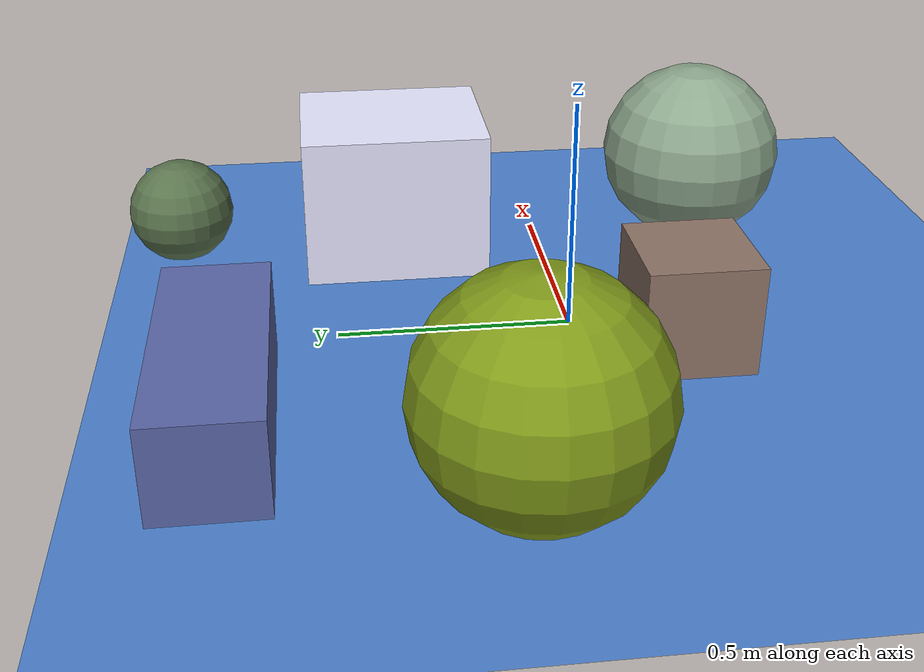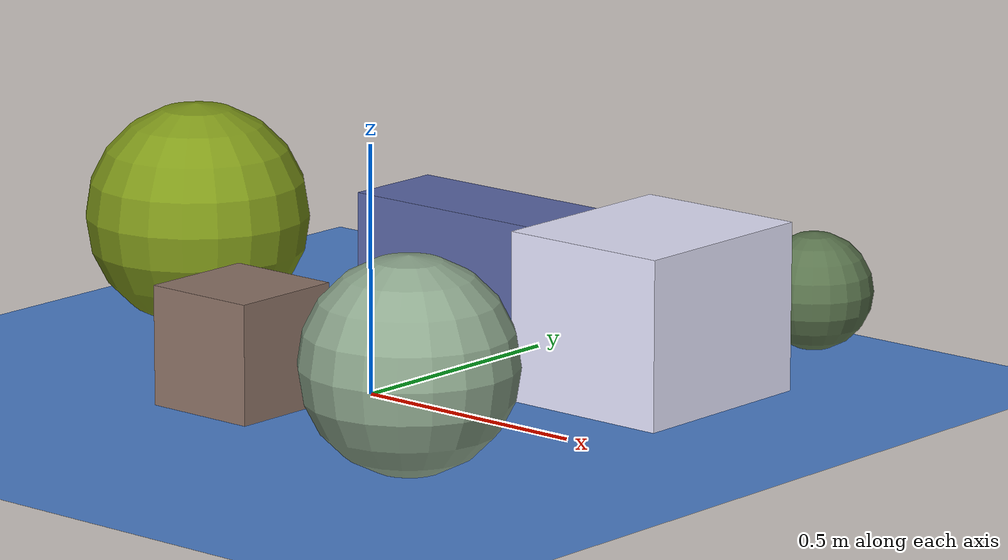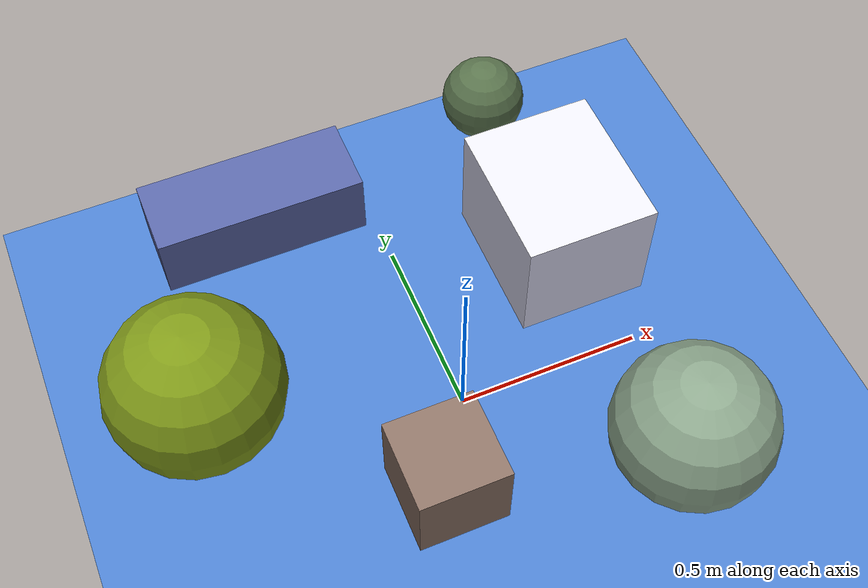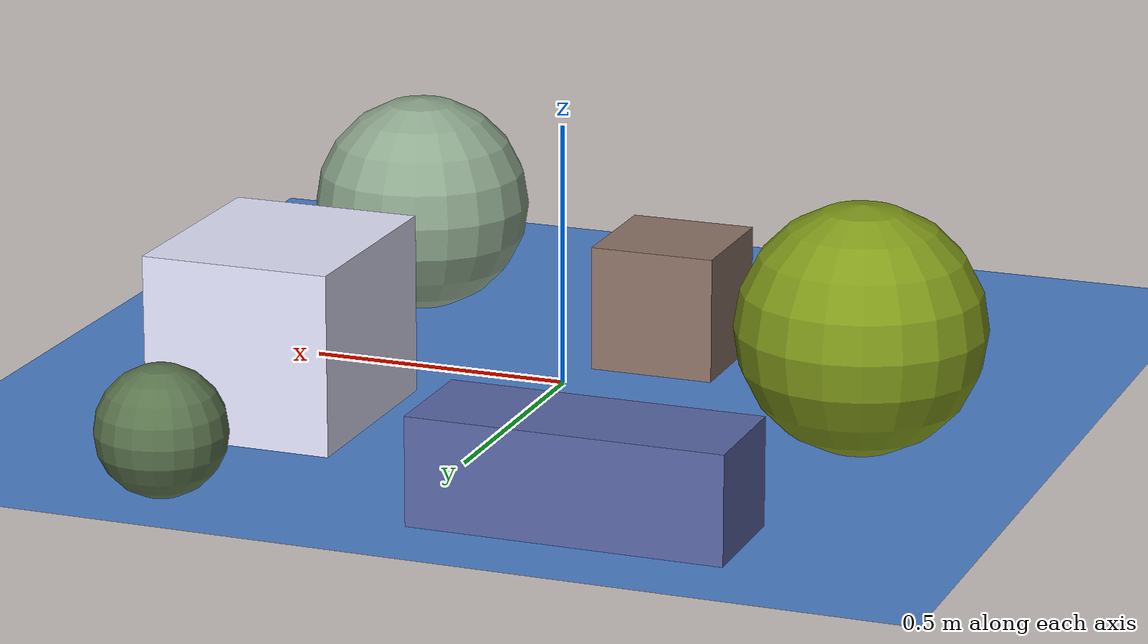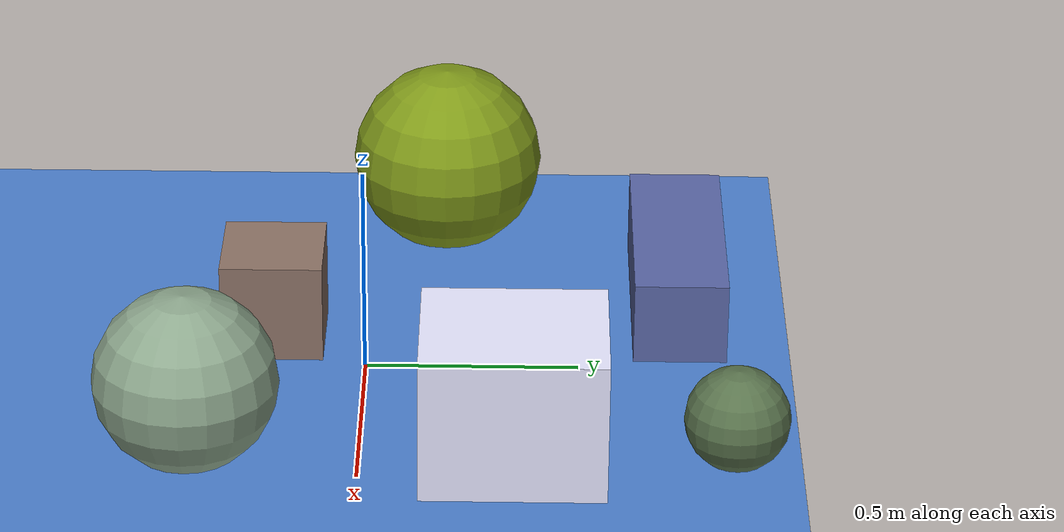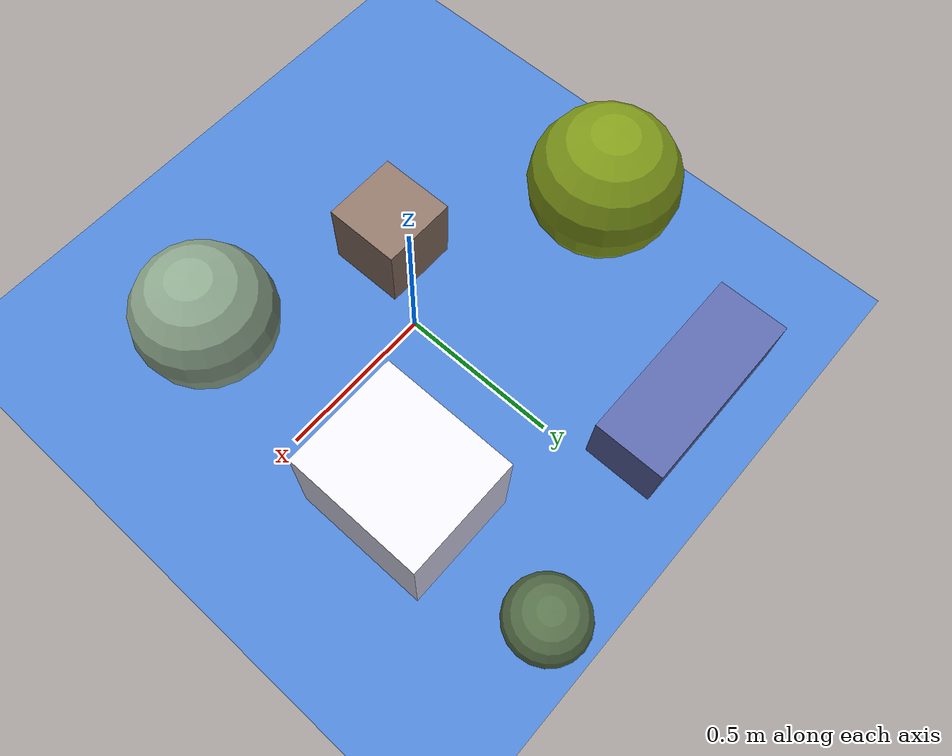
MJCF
<mujoco>
   <asset>
<texture type="skybox" builtin="gradient" rgb1="0.0 0.4 0.2" rgb2="1.0 0.4 0.4" width="256" height="256"/>
<texture name="checker_0" builtin="checker" type="2d" rgb1="0.7 0.5 0.8" rgb2="0.0 0.3 0.5" width="200" height="200"/>
<texture name="flat_1" builtin="flat" rgb1="0.9 0.9 1.0" rgb2="0.9 0.9 1.0"  width="200" height="200"/>
<texture name="flat_2" builtin="flat" rgb1="0.5 0.6 0.1" rgb2="0.5 0.6 0.1"  width="200" height="200"/>
<texture name="checker_3" builtin="checker" type="2d" rgb1="0.8 0.7 0.8" rgb2="0.3 0.2 0.0" width="200" height="200"/>
<texture name="checker_4" builtin="checker" type="2d" rgb1="0.4 0.5 0.5" rgb2="0.7 0.8 0.6" width="200" height="200"/>
<texture name="checker_5" builtin="checker" type="2d" rgb1="0.2 0.0 0.0" rgb2="0.5 0.9 0.6" width="200" height="200"/><material name="checker_0_mat" reflectance="0" texrepeat="4 4" texture="checker_0" texuniform="false" />
<material name="flat_1_mat" reflectance="0" texture="flat_1" texuniform="true"/>
<material name="flat_2_mat" reflectance="0" texture="flat_2" texuniform="true"/>
<material name="checker_3_mat" reflectance="0" texrepeat="4 4" texture="checker_3" texuniform="false" />
<material name="checker_4_mat" reflectance="0" texrepeat="10 10" texture="checker_4" texuniform="false" />
<material name="checker_5_mat" reflectance="0" texrepeat="4 4" texture="checker_5" texuniform="false" />
   </asset>

   <worldbody>
      <light diffuse=".9 .9 .9" pos="0 0 3" dir="0 0 -1"/>
     <geom type="plane" size="1 1 0.1" rgba="0.3 0.5 0.8 1"/>
<geom type="box" pos="-0.32 0.74 0.1" size="0.29 0.11 0.1" material="checker_0_mat" />
<geom type="box" pos="0.42 0.35 0.17" size="0.18 0.21 0.17" material="flat_1_mat" />
<geom type="sphere" pos="-0.64 0.18 0.23" size="0.23 0.23 0.23" material="flat_2_mat" />
<geom type="box" pos="-0.14 -0.22 0.12" size="0.12 0.12 0.12" material="checker_3_mat" />
<geom type="sphere" pos="0.44 -0.38 0.21" size="0.21 0.21 0.21" material="checker_4_mat" />
<geom type="sphere" pos="0.43 0.85 0.12" size="0.12 0.12 0.12" material="checker_5_mat" /><camera euler="60 0 180" fovy="60" name="camera_a" pos="0 -1.5 1"></camera>   </worldbody>
</mujoco>
